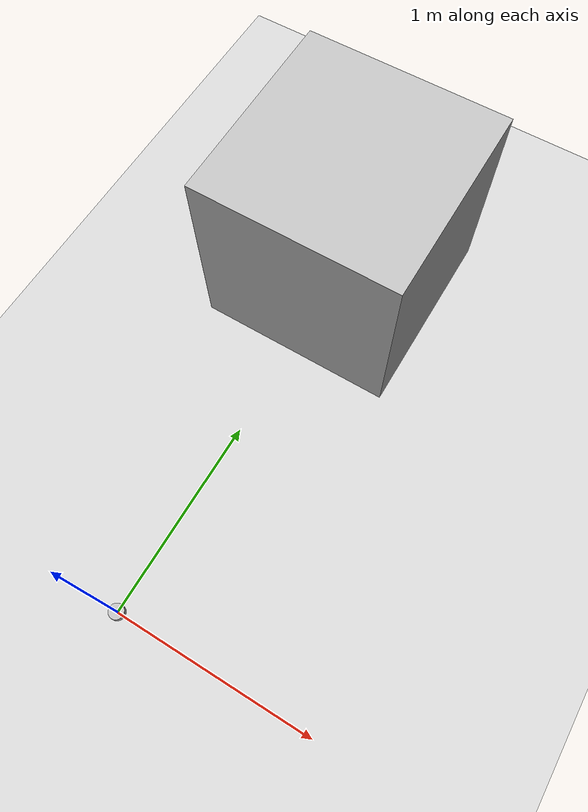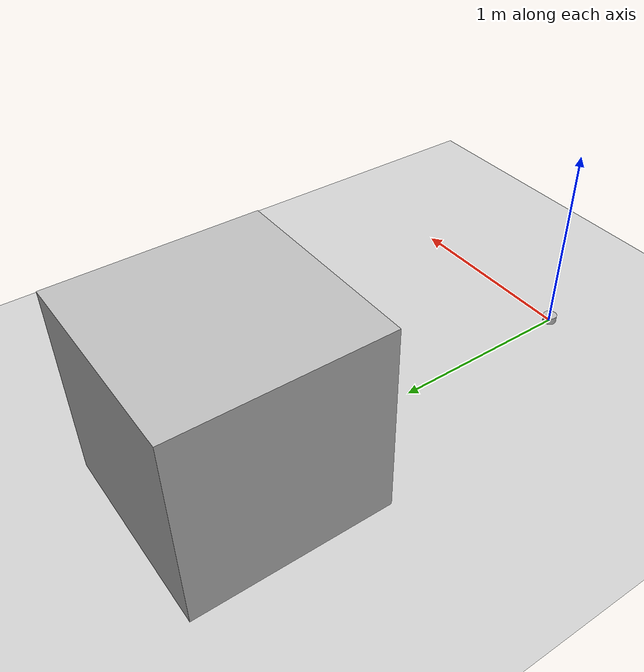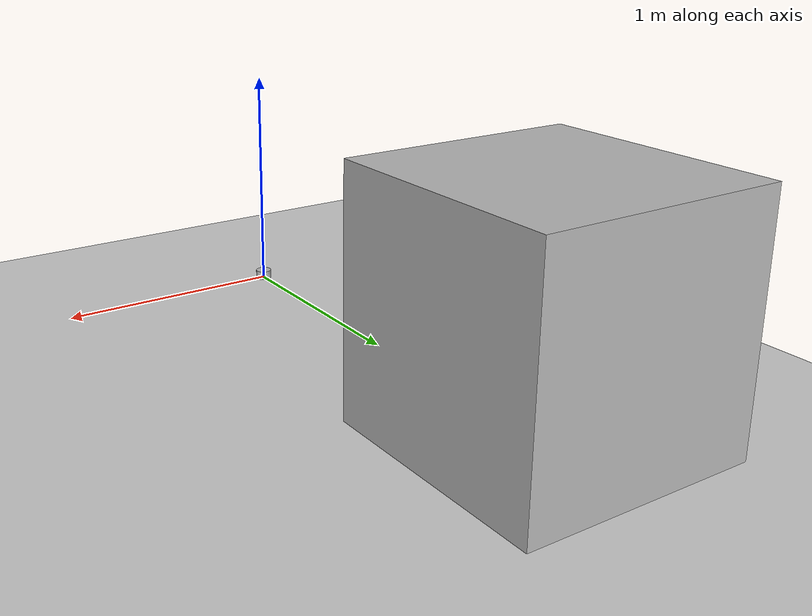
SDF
<sdf version="1.0">
    <world name="default">
        <!-- A global light source -->
        <include>
            <uri>model://sun</uri>
        </include>

        <!-- A ground plane -->
        <include>
            <uri>model://ground_plane</uri>
        </include>

        <include>
            <uri>model://lidar_model</uri>
        </include>

        <model name="test_box">
            <pose>0 2 0.5 0 0 0</pose>
            <static>true</static>
            <link name="link_box">
                <collision name="collision_box">
                    <geometry>
                    <box>
                        <size>1 1 1</size>
                    </box>
                    </geometry>
                </collision>
                <visual name="visual_box">
                    <geometry>
                    <box>
                        <size>1 1 1</size>
                    </box>
                    </geometry>
                </visual>
            </link>
        </model>
    </world>
</sdf>

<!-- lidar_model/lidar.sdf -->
<sdf version="1.6">
<model name="lidar">
	<static>true</static>
	<link name="lidar_link">
		<pose>0 0 0.02 0 0 0</pose>
      	<collision name="base_collision">
			<geometry>
				<cylinder>
					<radius>0.036285</radius>
					<length>0.04</length>
				</cylinder>
			</geometry>
      	</collision>

		<visual name="base_visual">
			<geometry>
				<cylinder>
					<radius>0.036285</radius>
					<length>0.04</length>
				</cylinder>
			</geometry>
		</visual>

		<sensor type="ray" name="sensor">
			<pose>0 0 -0.004645 0 0 0</pose>
			<visualize>true</visualize>
			<update_rate>10</update_rate>
			<ray>
				<scan>
					<horizontal>
						<samples>360</samples>
						<resolution>1</resolution>
						<min_angle>-3.141592</min_angle>
						<max_angle>3.141592</max_angle>
					</horizontal>
					<vertical>
						<samples>1</samples>
						<resolution>1</resolution>
						<min_angle>0</min_angle>
						<max_angle>-0.1</max_angle>
					</vertical>
				</scan>
				<range>
					<min>0.2</min>
					<max>18</max>
					<resolution>0.02</resolution>
				</range>
			</ray>
			<plugin name="lidar_control" filename="libsim_lidar_plugin.so">
				<topicName>/sensor/lidar/scan</topicName>
				<frameName>laser</frameName>
			</plugin>
		</sensor>
	</link>
</model>
</sdf>
